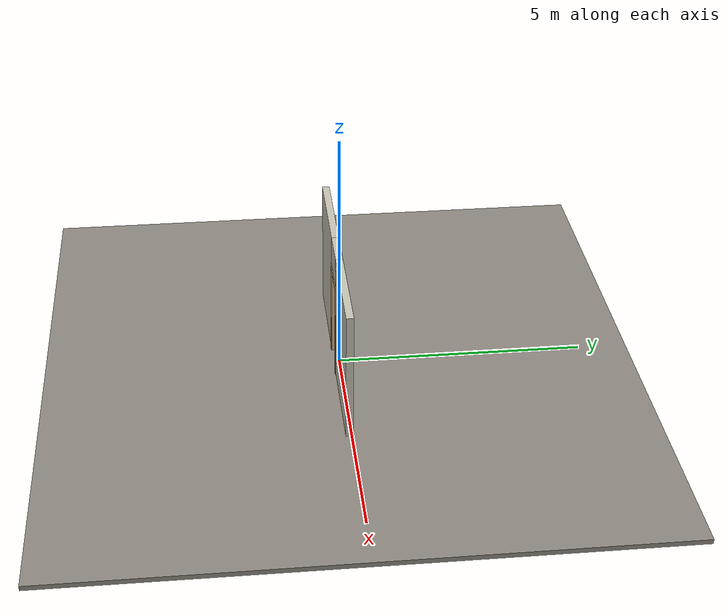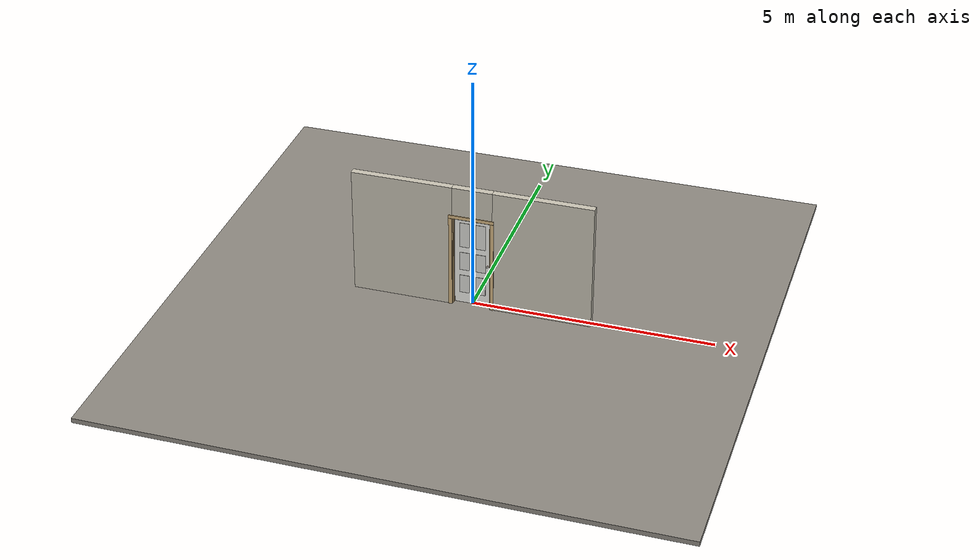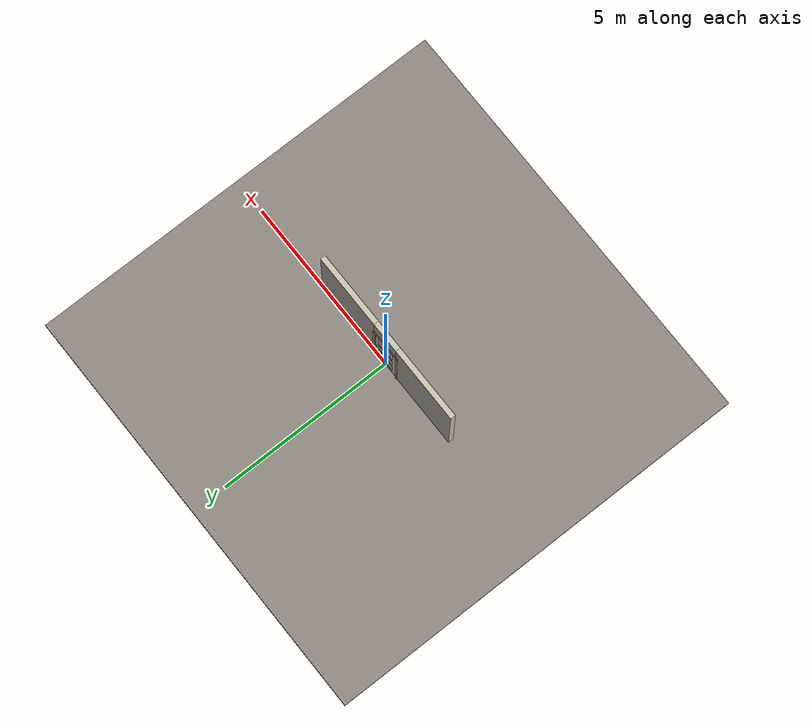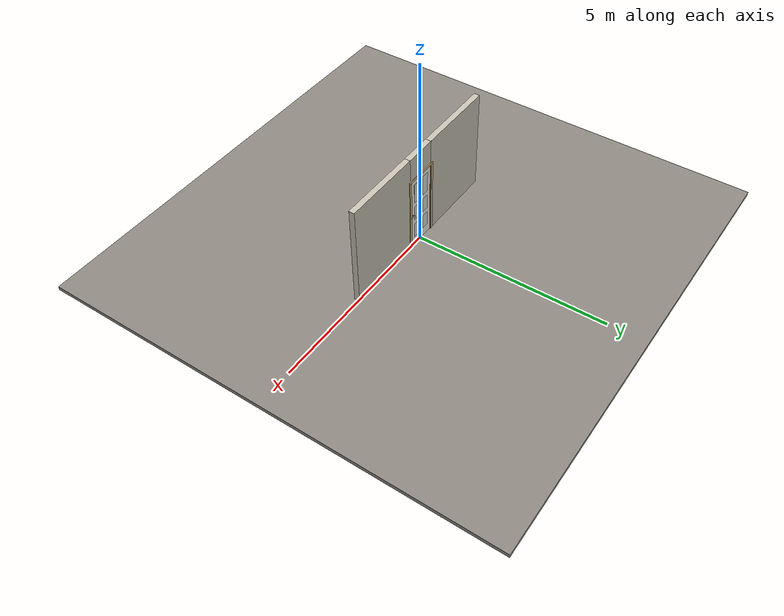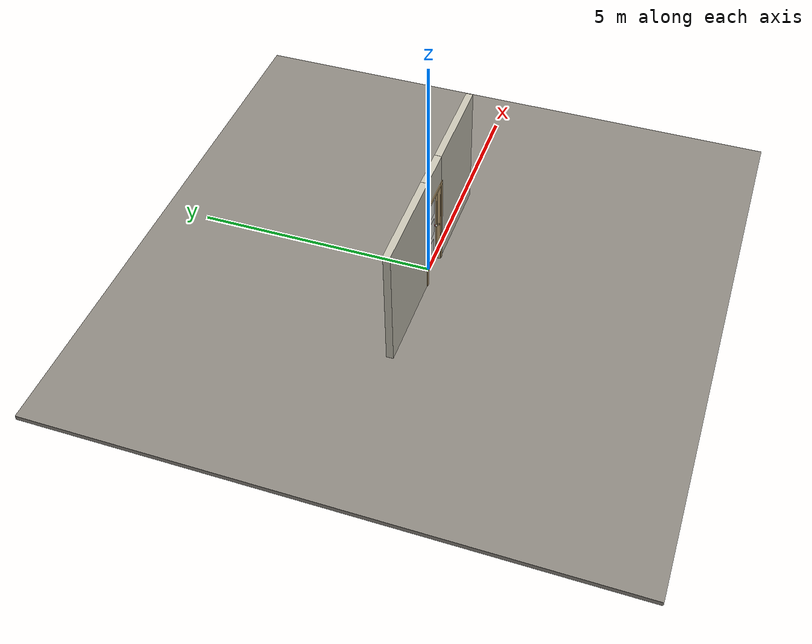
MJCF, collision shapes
<?xml version="1.0" ?>
<mujoco model="db0831_swing_single_full">
  <compiler angle="radian" meshdir="../../hardware" texturedir="../../textures" autolimits="true" inertiafromgeom="false"/>
  <option timestep="0.002" integrator="implicitfast" cone="elliptic" impratio="10" noslip_iterations="3">
    <flag multiccd="enable"/>
  </option>
  <size memory="16M"/>
  <default>
    <geom condim="4" solref="0.005 1" solimp="0.95 0.99 0.001"/>
    <joint solreflimit="0.005 1" solimplimit="0.95 0.99 0.001"/>
    <tendon solreflimit="0.005 1"/>
    <equality solref="0.002 1"/>
  </default>
  <visual>
    <headlight ambient="0.4 0.4 0.4" diffuse="0.7 0.7 0.7" specular="0.2 0.2 0.2"/>
    <quality shadowsize="4096"/>
    <map znear="0.01" zfar="60"/>
  </visual>
  <asset>
    <mesh name="hinge_96510cf394" file="hinge_96510cf394.obj"/>
    <mesh name="hinge_jamb_7fd4ca52b2" file="hinge_jamb_7fd4ca52b2.obj"/>
    <mesh name="knob_248d825e64" file="knob_248d825e64.obj"/>
    <mesh name="knob_d1888f6f03" file="knob_d1888f6f03.obj"/>
    <material name="mat_floor" rgba="0.55 0.53 0.5 1" specular="0.2" shininess="0.15" reflectance="0"/>
    <material name="mat_wall" rgba="0.78 0.76 0.7 1" specular="0.2" shininess="0.1" reflectance="0"/>
    <material name="mat_leaf" rgba="0.93 0.93 0.91 1" specular="0.2" shininess="0.44" reflectance="0"/>
    <material name="mat_leaf_panel" rgba="0.856 0.856 0.837 1" specular="0.2" shininess="0.44" reflectance="0"/>
    <material name="mat_hinge" rgba="0.65 0.66 0.68 1" specular="0.74" shininess="0.5" reflectance="0.36"/>
    <material name="mat_op_nickel_satin" rgba="0.72 0.7 0.66 1" specular="0.8" shininess="0.65" reflectance="0.4"/>
    <material name="mat_trim" rgba="0.85 0.66 0.3 1" specular="0.8" shininess="0.75" reflectance="0.4"/>
    <material name="mat_bolt" rgba="0.85 0.66 0.3 1" specular="0.8" shininess="0.75" reflectance="0.4"/>
    <material name="mat_frame" rgba="0.82 0.7 0.5 1" specular="0.2" shininess="0.45" reflectance="0"/>
    <texture name="skybox" type="skybox" builtin="gradient" rgb1="0.6 0.7 0.85" rgb2="0.9 0.92 0.95" width="256" height="256"/>
  </asset>
  <worldbody>
    <light name="sun" pos="1.5 -2.5 4" dir="-0.3 0.5 -0.8" directional="true" diffuse="0.8 0.8 0.8" specular="0.3 0.3 0.3" castshadow="true"/>
    <light name="fill" pos="-1.5 2.5 3" dir="0.3 -0.5 -0.7" directional="true" diffuse="0.35 0.35 0.4" castshadow="false"/>
    <camera name="robot_view" pos="0 -2.546125 1.698475" xyaxes="1 0 0 0 0.26963 0.962964" fovy="52"/>
    <camera name="far_view" pos="0 2.450125 1.698475" xyaxes="-1 0 0 0 -0.26963 0.962964" fovy="52"/>
    <camera name="iso" pos="1.898575 -2.146425 2.098175" xyaxes="0.741536 0.670913 0 -0.242917 0.268487 0.932151" fovy="46"/>
    <camera name="detail_handle" pos="0.5005 -0.864 1.245" xyaxes="0.97561 0.219512 0 -0.070934 0.315262 0.94635" fovy="38"/>
    <geom name="floor" type="box" size="6 6 0.05" pos="0 0 -0.05" material="mat_floor" group="0" contype="1" conaffinity="1" friction="0.8 0.005 0.0001" density="2400"/>
    <geom name="wall_left" type="box" size="1.04825 0.0725 1.35" pos="-1.45175 -0.048 1.35" material="mat_wall" group="0" contype="1" conaffinity="1" friction="0.6 0.005 0.0001" density="800"/>
    <geom name="wall_right" type="box" size="1.03325 0.0725 1.35" pos="1.46675 -0.048 1.35" material="mat_wall" group="0" contype="1" conaffinity="1" friction="0.6 0.005 0.0001" density="800"/>
    <geom name="wall_header" type="box" size="0.4185 0.0725 0.3265" pos="0.015 -0.048 2.3735" material="mat_wall" group="0" contype="1" conaffinity="1" friction="0.6 0.005 0.0001" density="800"/>
    <geom name="hinge_0_jamb" type="mesh" mesh="hinge_jamb_7fd4ca52b2" pos="-0.3815 0.0245 0.259" quat="0 1 0 0" material="mat_hinge" group="1" contype="0" conaffinity="0" density="7850"/>
    <geom name="hinge_1_jamb" type="mesh" mesh="hinge_jamb_7fd4ca52b2" pos="-0.3815 0.0245 1.814" quat="0 1 0 0" material="mat_hinge" group="1" contype="0" conaffinity="0" density="7850"/>
    <geom name="jamb_hinge" type="box" size="0.0095 0.0725 0.999" pos="-0.394 -0.048 0.999" material="mat_frame" group="0" contype="1" conaffinity="1" friction="0.6 0.005 0.0001" density="400"/>
    <geom name="strike_965_wall_n" type="box" size="0.0245 0.056325 0.0167" pos="0.409 -0.064175 0.965" material="mat_frame" group="0" contype="1" conaffinity="1" friction="0.6 0.005 0.0001" density="400"/>
    <geom name="strike_965_wall_p" type="box" size="0.0245 0.008 0.0167" pos="0.409 0.01585 0.965" material="mat_frame" group="0" contype="1" conaffinity="1" friction="0.6 0.005 0.0001" density="400"/>
    <geom name="strike_965_ramp" type="box" size="0.0245 0.01649 0.0167" pos="0.413636 0.028673 0.965" quat="0.977148 0 0 -0.212558" material="mat_frame" group="0" contype="1" conaffinity="1" friction="0.12 0.005 0.0001" density="400"/>
    <geom name="strike_965_back" type="box" size="0.01615 0.00785 0.0167" pos="0.41735 0 0.965" material="mat_frame" group="0" contype="1" conaffinity="1" friction="0.6 0.005 0.0001" density="400"/>
    <geom name="jamb_strike_0" type="box" size="0.0245 0.0725 0.47415" pos="0.409 -0.048 0.47415" material="mat_frame" group="0" contype="1" conaffinity="1" friction="0.6 0.005 0.0001" density="400"/>
    <geom name="jamb_strike_1" type="box" size="0.0245 0.0725 0.50815" pos="0.409 -0.048 1.48985" material="mat_frame" group="0" contype="1" conaffinity="1" friction="0.6 0.005 0.0001" density="400"/>
    <geom name="jamb_head" type="box" size="0.4185 0.0725 0.0095" pos="0.015 -0.048 2.0075" material="mat_frame" group="0" contype="1" conaffinity="1" friction="0.6 0.005 0.0001" density="400"/>
    <geom name="head_stud" type="box" size="0.4185 0.0725 0.015" pos="0.015 -0.048 2.032" material="mat_wall" group="0" contype="1" conaffinity="1" friction="0.6 0.005 0.0001" density="500"/>
    <geom name="stop_hinge" type="box" size="0.0055 0.016 0.999" pos="-0.379 -0.034 0.999" material="mat_frame" group="0" contype="1" conaffinity="1" friction="0.6 0.005 0.0001" density="400"/>
    <geom name="stop_strike" type="box" size="0.0055 0.016 0.999" pos="0.379 -0.034 0.999" material="mat_frame" group="0" contype="1" conaffinity="1" friction="0.6 0.005 0.0001" density="400"/>
    <geom name="stop_head" type="box" size="0.3845 0.016 0.0055" pos="0 -0.034 1.9925" material="mat_frame" group="0" contype="1" conaffinity="1" friction="0.6 0.005 0.0001" density="400"/>
    <geom name="casing_l_n" type="box" size="0.035 0.008 1.0085" pos="-0.4335 -0.1285 0.999" material="mat_frame" group="2" contype="0" conaffinity="0" density="400"/>
    <geom name="casing_r_n" type="box" size="0.035 0.008 1.0085" pos="0.4335 -0.1285 0.999" material="mat_frame" group="2" contype="0" conaffinity="0" density="400"/>
    <geom name="casing_h_n" type="box" size="0.4685 0.008 0.035" pos="0 -0.1285 2.047" material="mat_frame" group="2" contype="0" conaffinity="0" density="400"/>
    <geom name="casing_l_p" type="box" size="0.035 0.008 1.0085" pos="-0.4335 0.0325 0.999" material="mat_frame" group="2" contype="0" conaffinity="0" density="400"/>
    <geom name="casing_r_p" type="box" size="0.035 0.008 1.0085" pos="0.4335 0.0325 0.999" material="mat_frame" group="2" contype="0" conaffinity="0" density="400"/>
    <geom name="casing_h_p" type="box" size="0.4685 0.008 0.035" pos="0 0.0325 2.047" material="mat_frame" group="2" contype="0" conaffinity="0" density="400"/>
    <site name="approach_point" pos="0 -1.5 0" quat="1 0 0 0" size="0.05" rgba="0.2 0.9 0.2 0.5" group="4"/>
    <site name="goal_point" pos="0 1.5 0" quat="1 0 0 0" size="0.05" rgba="0.2 0.9 0.2 0.5" group="4"/>
    <site name="door_plane_center" pos="0 0 0.999" quat="1 0 0 0" size="0.02" rgba="0.2 0.9 0.2 0.5" group="4"/>
    <body name="leaf" pos="-0.3845 0 0">
      <inertial pos="0.375125 0.000359 1.002356" mass="10.955297" quat="0.499646 0.500945 0.499037 -0.500371" diaginertia="0.55763806 3.668045615 4.22330591"/>
      <joint name="leaf_hinge" type="hinge" axis="0 0 1" pos="0.003 0.0245 0" limited="true" range="0 1.745329" damping="0.170864" frictionloss="1.149412" armature="0.02"/>
      <geom name="leaf_slab" type="box" size="0.381 0.0175 0.9925" pos="0.384 0 1.0015" material="mat_leaf" group="0" contype="1" conaffinity="1" friction="0.35 0.005 0.0001" density="1"/>
      <geom name="leaf_panel_0_n" type="box" size="0.103 0.003 0.20311" pos="0.216 -0.0205 0.45046" material="mat_leaf_panel" group="1" contype="0" conaffinity="0" density="1"/>
      <geom name="leaf_panel_0_p" type="box" size="0.103 0.003 0.20311" pos="0.216 0.0205 0.45046" material="mat_leaf_panel" group="1" contype="0" conaffinity="0" density="1"/>
      <geom name="leaf_panel_1_n" type="box" size="0.103 0.003 0.20311" pos="0.552 -0.0205 0.45046" material="mat_leaf_panel" group="1" contype="0" conaffinity="0" density="1"/>
      <geom name="leaf_panel_1_p" type="box" size="0.103 0.003 0.20311" pos="0.552 0.0205 0.45046" material="mat_leaf_panel" group="1" contype="0" conaffinity="0" density="1"/>
      <geom name="leaf_panel_2_n" type="box" size="0.103 0.003 0.20311" pos="0.216 -0.0205 0.98668" material="mat_leaf_panel" group="1" contype="0" conaffinity="0" density="1"/>
      <geom name="leaf_panel_2_p" type="box" size="0.103 0.003 0.20311" pos="0.216 0.0205 0.98668" material="mat_leaf_panel" group="1" contype="0" conaffinity="0" density="1"/>
      <geom name="leaf_panel_3_n" type="box" size="0.103 0.003 0.20311" pos="0.552 -0.0205 0.98668" material="mat_leaf_panel" group="1" contype="0" conaffinity="0" density="1"/>
      <geom name="leaf_panel_3_p" type="box" size="0.103 0.003 0.20311" pos="0.552 0.0205 0.98668" material="mat_leaf_panel" group="1" contype="0" conaffinity="0" density="1"/>
      <geom name="leaf_panel_4_n" type="box" size="0.103 0.003 0.27748" pos="0.216 -0.0205 1.59727" material="mat_leaf_panel" group="1" contype="0" conaffinity="0" density="1"/>
      <geom name="leaf_panel_4_p" type="box" size="0.103 0.003 0.27748" pos="0.216 0.0205 1.59727" material="mat_leaf_panel" group="1" contype="0" conaffinity="0" density="1"/>
      <geom name="leaf_panel_5_n" type="box" size="0.103 0.003 0.27748" pos="0.552 -0.0205 1.59727" material="mat_leaf_panel" group="1" contype="0" conaffinity="0" density="1"/>
      <geom name="leaf_panel_5_p" type="box" size="0.103 0.003 0.27748" pos="0.552 0.0205 1.59727" material="mat_leaf_panel" group="1" contype="0" conaffinity="0" density="1"/>
      <geom name="hinge_0" type="mesh" mesh="hinge_96510cf394" pos="0.003 0.0245 0.259" quat="0 1 0 0" material="mat_hinge" group="1" contype="0" conaffinity="0" density="7850"/>
      <geom name="hinge_1" type="mesh" mesh="hinge_96510cf394" pos="0.003 0.0245 1.814" quat="0 1 0 0" material="mat_hinge" group="1" contype="0" conaffinity="0" density="7850"/>
      <geom name="leaf_latch_bolt_faceplate" type="box" size="0.0006 0.01235 0.0267" pos="0.7644 0 0.965" material="mat_bolt" group="1" contype="0" conaffinity="0" density="8500"/>
      <site name="leaf_edge_mid" pos="0.765 0 0.9925" quat="1 0 0 0" size="0.02" rgba="0.2 0.9 0.2 0.5" group="4"/>
      <body name="leaf_handle" pos="0.705 0 0.965">
        <inertial pos="0 0.000216 0" mass="1.146661" quat="0.5 0.5 0.5 0.5" diaginertia="0.000312402 0.003728942 0.003728942"/>
        <joint name="leaf_handle_hinge" type="hinge" axis="0 -1 0" limited="true" range="0 0.11" damping="0.143613" frictionloss="0.038" stiffness="0.5" springref="-0.5" armature="0.01"/>
        <geom name="leaf_handle_spindle" type="cylinder" size="0.006 0.0255" pos="0 0 0" quat="0.707107 -0.707107 0 0" material="mat_op_nickel_satin" group="1" contype="0" conaffinity="0" density="7850"/>
        <geom name="leaf_handle_knob_n" type="mesh" mesh="knob_d1888f6f03" pos="0 -0.0175 0" quat="0.707107 0.707107 0 0" material="mat_op_nickel_satin" group="1" contype="0" conaffinity="0" density="3000"/>
        <geom name="leaf_handle_knob_col_n" type="sphere" size="0.0243" pos="0 -0.064 0" material="mat_op_nickel_satin" group="0" contype="1" conaffinity="1" friction="0.9 0.01 0.0001" density="3000"/>
        <geom name="leaf_handle_knob_neck_n" type="cylinder" size="0.011 0.012" pos="0 -0.0295 0" quat="0.707107 -0.707107 0 0" material="mat_op_nickel_satin" group="3" contype="1" conaffinity="1" rgba="0.8 0.3 0.3 0.25" friction="0.6 0.005 0.0001" density="3000"/>
        <geom name="leaf_handle_knob_p" type="mesh" mesh="knob_248d825e64" pos="0 0.0175 0" quat="-0.707107 0.707107 0 0" material="mat_op_nickel_satin" group="1" contype="0" conaffinity="0" density="3000"/>
        <geom name="leaf_handle_knob_col_p" type="sphere" size="0.0243" pos="0 0.064 0" material="mat_op_nickel_satin" group="0" contype="1" conaffinity="1" friction="0.9 0.01 0.0001" density="3000"/>
        <geom name="leaf_handle_knob_neck_p" type="cylinder" size="0.011 0.012" pos="0 0.0295 0" quat="0.707107 -0.707107 0 0" material="mat_op_nickel_satin" group="3" contype="1" conaffinity="1" rgba="0.8 0.3 0.3 0.25" friction="0.6 0.005 0.0001" density="3000"/>
        <site name="leaf_handle_grip_n" pos="0 -0.064 0" quat="1 0 0 0" size="0.012" rgba="0.2 0.9 0.2 0.5" group="4"/>
        <site name="leaf_handle_grip_p" pos="0 0.064 0" quat="1 0 0 0" size="0.012" rgba="0.2 0.9 0.2 0.5" group="4"/>
      </body>
      <body name="leaf_latch_bolt" pos="0.765 0 0.965">
        <inertial pos="-0.00865 0 0" mass="0.041419" quat="0.92388 -0.382683 0 0" diaginertia="0.000000798 0.000005598 0.000005598"/>
        <joint name="leaf_latch_bolt_slide" type="slide" axis="-1 0 0" limited="true" range="0 0.0127" damping="2" frictionloss="0.3" stiffness="300" springref="-0.008333" armature="0.1"/>
        <geom name="leaf_latch_bolt_capsule" type="capsule" size="0.00635 0.015" pos="-0.00865 0 0" quat="0.707107 0 0.707107 0" material="mat_bolt" group="0" contype="1" conaffinity="1" friction="0.2 0.005 0.0001" density="8500"/>
      </body>
    </body>
  </worldbody>
  <tendon>
    <fixed name="leaf_latch_bolt_coupling" limited="true" range="0 10">
      <joint joint="leaf_latch_bolt_slide" coef="1"/>
      <joint joint="leaf_handle_hinge" coef="-0.015679"/>
    </fixed>
  </tendon>
  <sensor>
    <jointpos name="leaf_hinge_pos" joint="leaf_hinge"/>
    <jointvel name="leaf_hinge_vel" joint="leaf_hinge"/>
    <jointpos name="leaf_handle_hinge_pos" joint="leaf_handle_hinge"/>
    <jointvel name="leaf_handle_hinge_vel" joint="leaf_handle_hinge"/>
    <jointpos name="leaf_latch_bolt_slide_pos" joint="leaf_latch_bolt_slide"/>
    <jointvel name="leaf_latch_bolt_slide_vel" joint="leaf_latch_bolt_slide"/>
  </sensor>
</mujoco>
